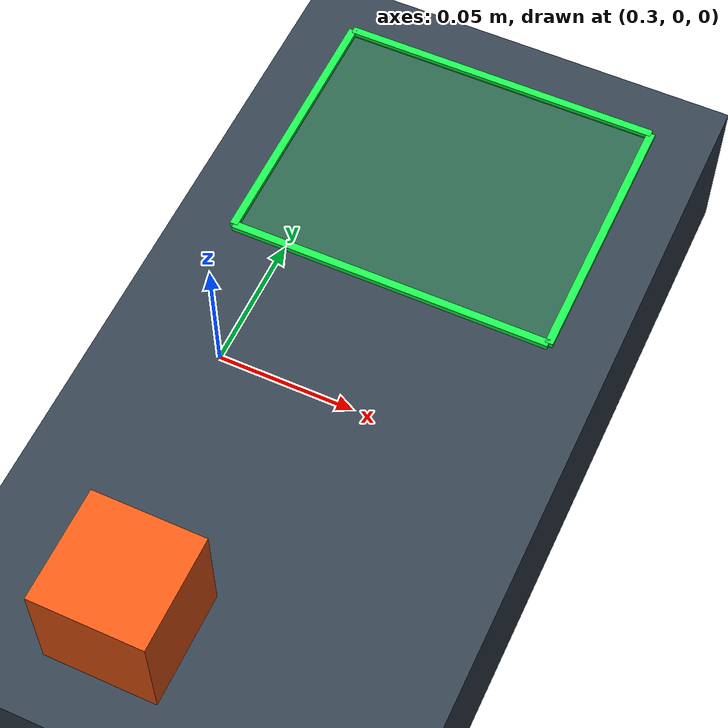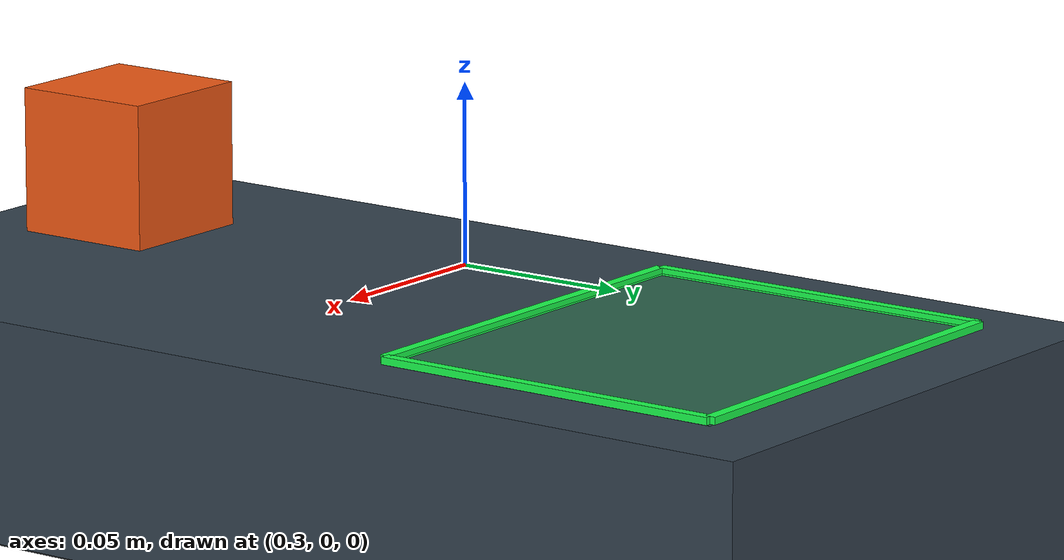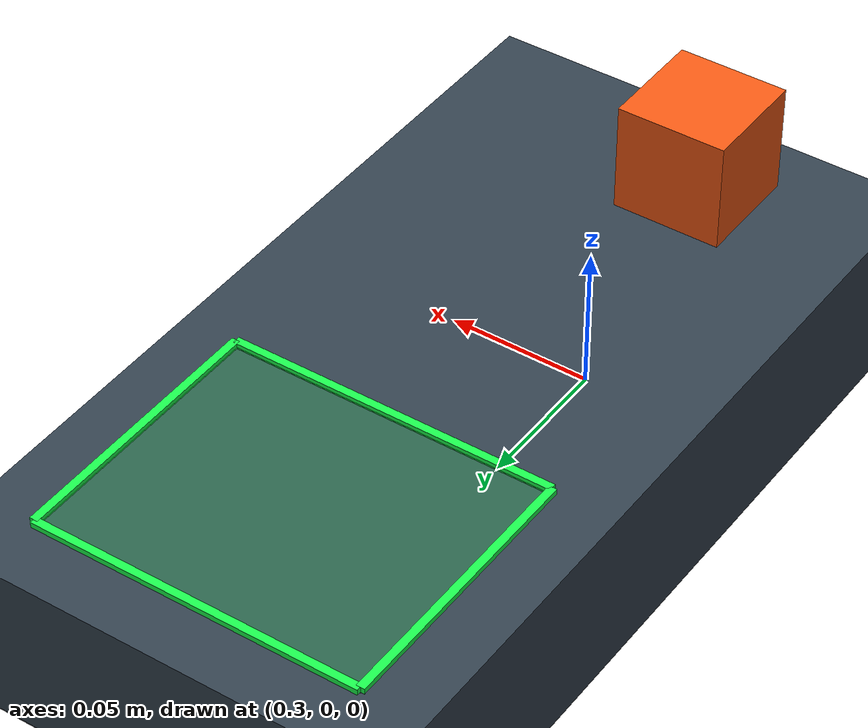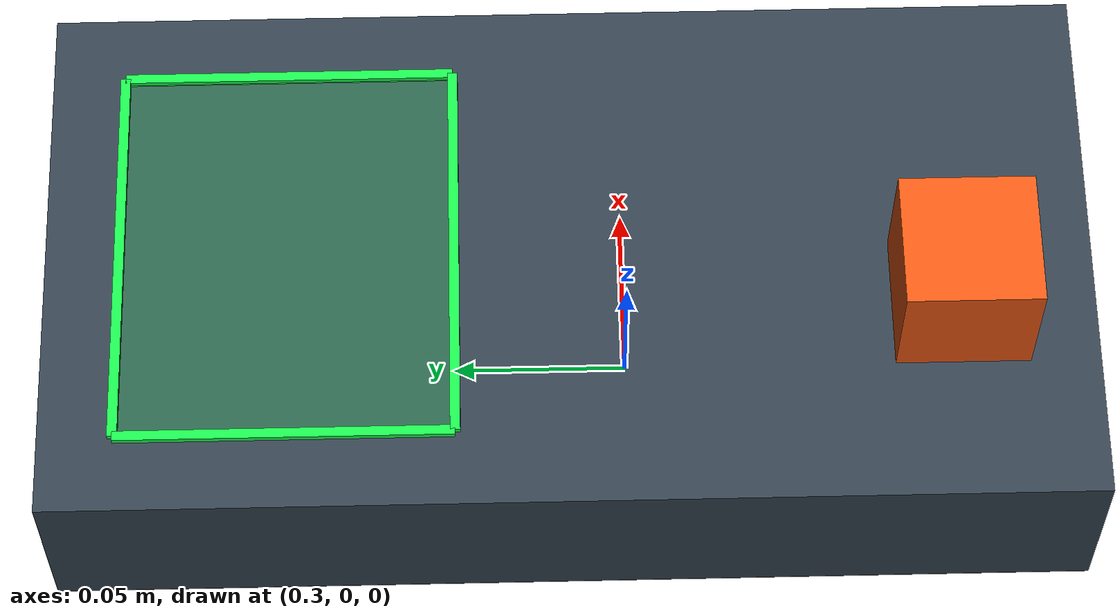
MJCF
<mujoco model="piper_pick_place_task">
  <!-- Merged with the unmodified Menagerie Piper model by PiperPickPlaceEnv. -->
  <option timestep="0.002" iterations="50"/>
  <visual>
    <headlight diffuse="0.7 0.7 0.7" ambient="0.35 0.35 0.35" specular="0.1 0.1 0.1"/>
    <global offwidth="640" offheight="480"/>
  </visual>
  <asset>
    <texture name="table_texture" type="2d" builtin="checker" width="256" height="256"
             rgb1="0.18 0.23 0.28" rgb2="0.22 0.28 0.33"/>
    <material name="table_material" texture="table_texture" texrepeat="6 6" texuniform="true"/>
  </asset>
  <worldbody>
    <light pos="0.3 -0.4 1.2" dir="0 0 -1" directional="true"/>
    <geom name="floor" type="plane" pos="0 0 -0.06" size="1 1 0.02" rgba="0.12 0.14 0.16 1"/>
    <geom name="table" type="box" pos="0.25 0 -0.03" size="0.40 0.36 0.03"
          material="table_material" friction="1 0.005 0.0001"/>
    <body name="cube" pos="0.32 -0.10 0.02">
      <freejoint name="cube_free"/>
      <geom name="cube_geom" type="box" size="0.02 0.02 0.02" mass="0.04"
            rgba="0.95 0.35 0.08 1" friction="1.3 0.005 0.0001" condim="4"/>
    </body>
    <body name="goal_area" mocap="true" pos="0.34 0.10 0.001">
      <!-- Sites are visual only: this is a flat target area, not a physical bin. -->
      <site name="goal_fill" type="box" size="0.06 0.05 0.0005" rgba="0.1 0.9 0.3 0.22"/>
      <site type="box" pos="-0.06 0 0.001" size="0.0015 0.05 0.001" rgba="0.1 1 0.3 1"/>
      <site type="box" pos="0.06 0 0.001" size="0.0015 0.05 0.001" rgba="0.1 1 0.3 1"/>
      <site type="box" pos="0 -0.05 0.001" size="0.06 0.0015 0.001" rgba="0.1 1 0.3 1"/>
      <site type="box" pos="0 0.05 0.001" size="0.06 0.0015 0.001" rgba="0.1 1 0.3 1"/>
    </body>
  </worldbody>
</mujoco>
